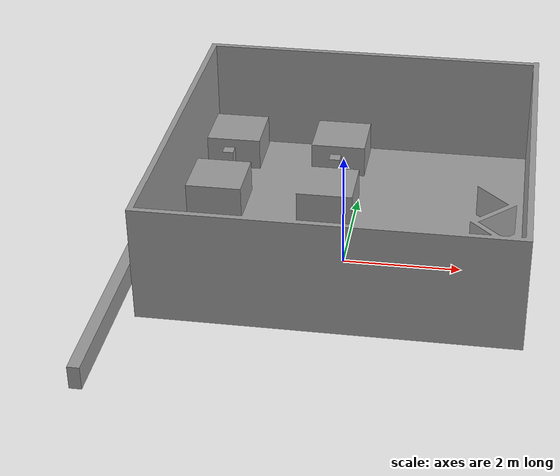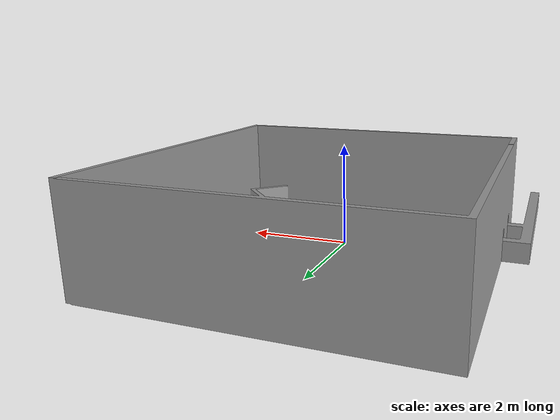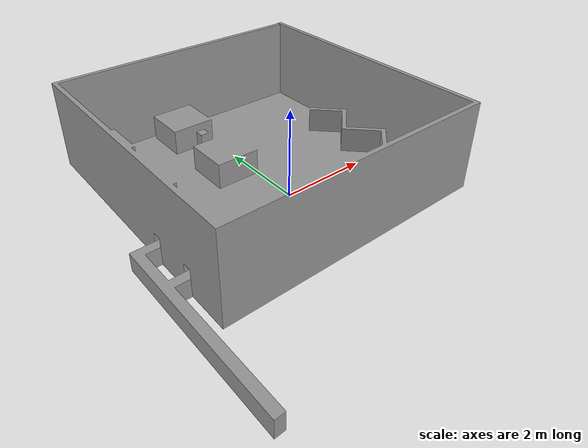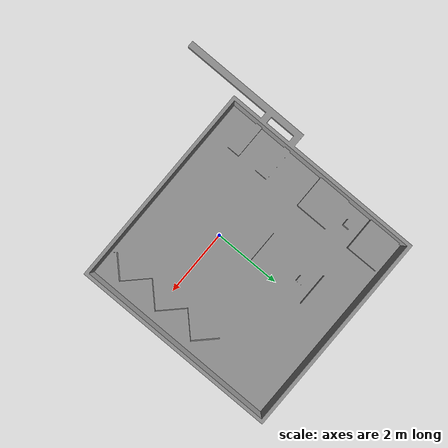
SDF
<?xml version="1.0" ?>
<sdf version="1.8">
  <model name="workbench_station">
    <!-- 주변 환경 구조물이므로 고정(Static) 상태로 설정 -->
    <static>true</static>

    <link name="workbench_link">

      <!-- 1. 시각적으로 보여지는 부분 (Visual) -->
      <visual name="workbench_visual">
        <geometry>
          <mesh>
            <uri>model://my_workbench_map/meshes/my_map.stl</uri>
            <scale>1 1 1</scale>
          </mesh>
        </geometry>
        <!-- 양면 렌더링 활성화 -->
        <material>
          <ambient>0.6 0.6 0.6 1</ambient>
          <diffuse>0.6 0.6 0.6 1</diffuse>
          <double_sided>true</double_sided>
        </material>
      </visual>

      <!-- 2. 물리적 충돌 영역 (Collision) -->
      <collision name="workbench_collision">
        <geometry>
          <mesh>
            <uri>model://my_workbench_map/meshes/my_map.stl</uri>
            <scale>1 1 1</scale>
          </mesh>
        </geometry>
      </collision>

    </link>
  </model>
</sdf>
